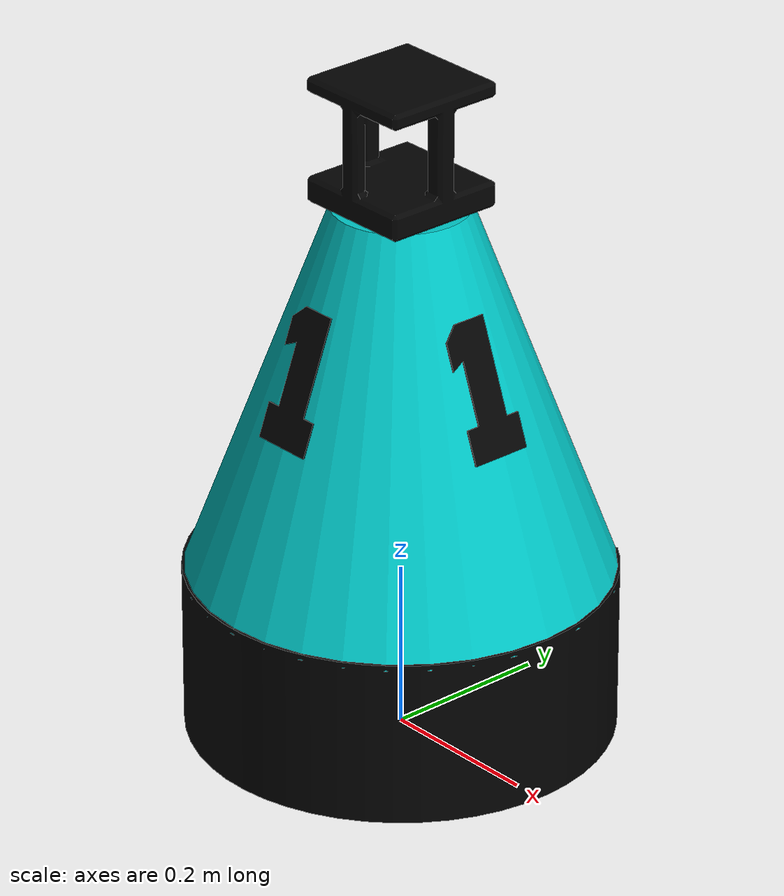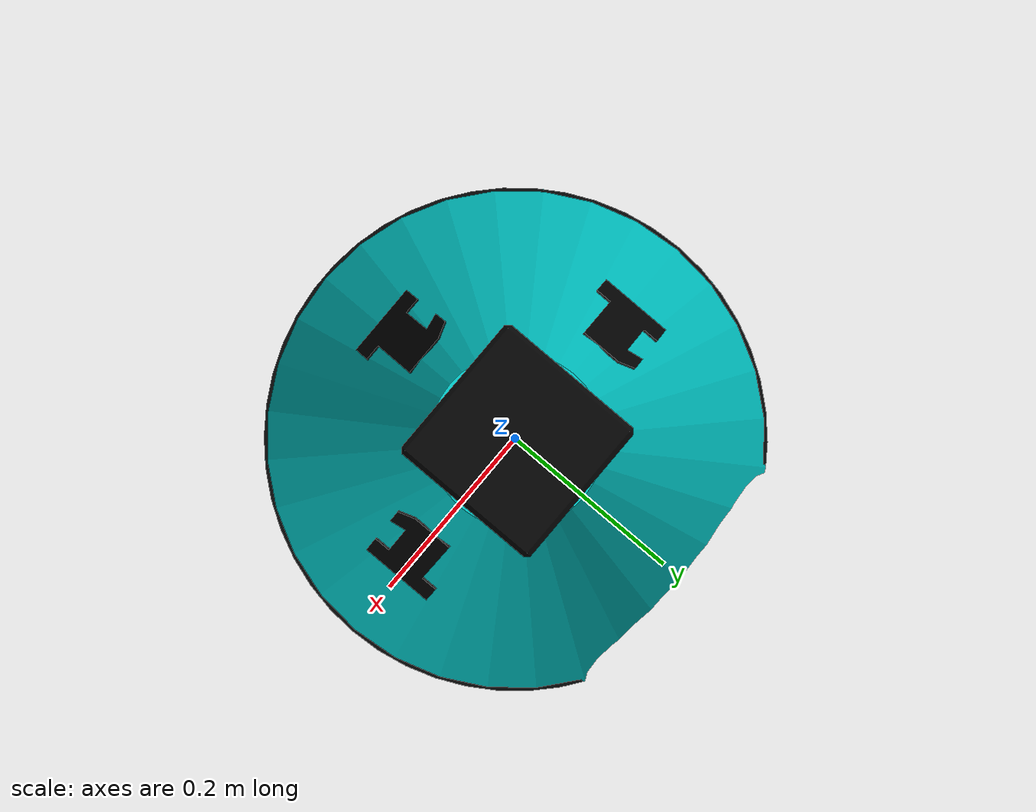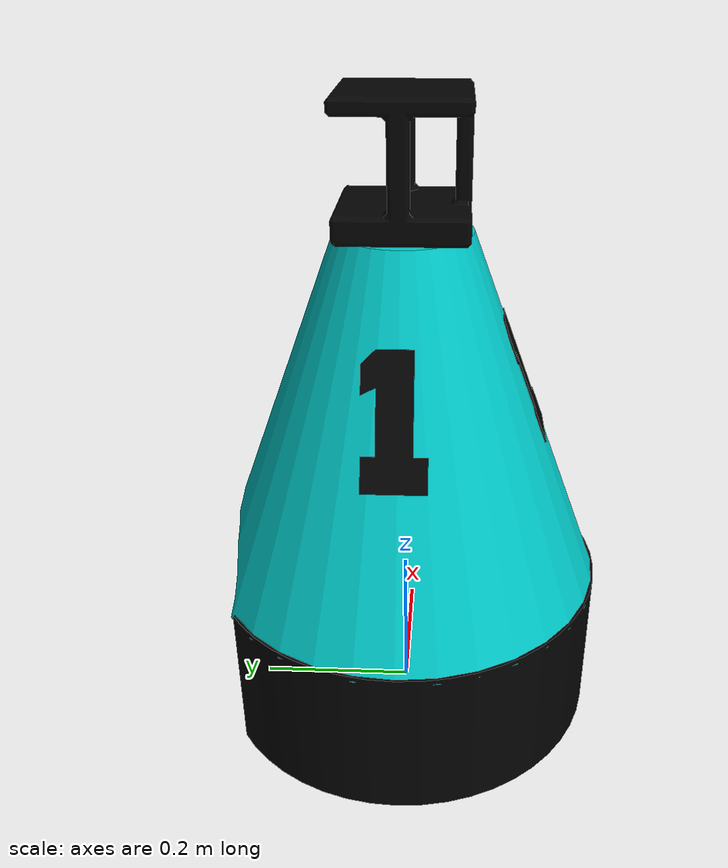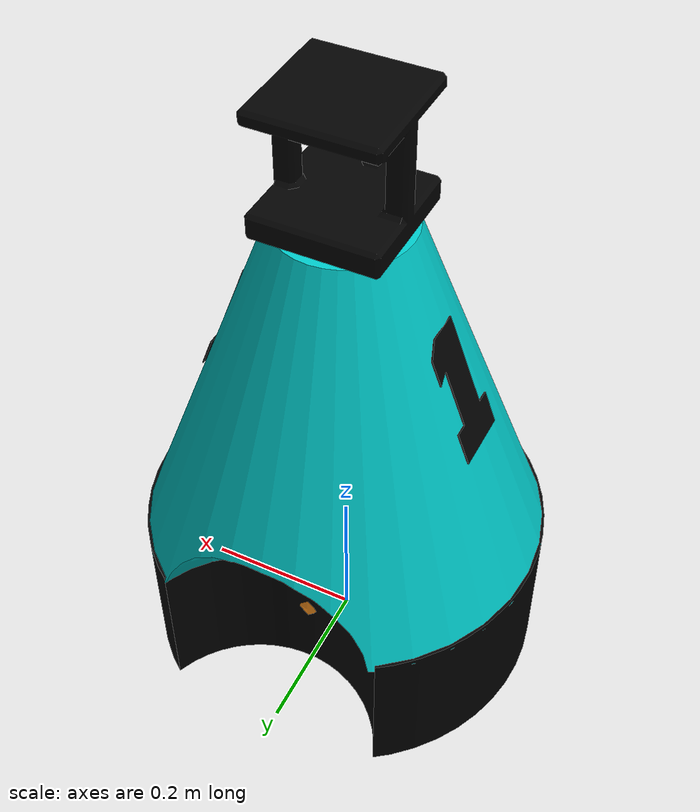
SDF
<sdf version="1.5">
 <world name="default">
  <include><uri>model://sun</uri></include>
  <physics type="ode">
   <max_step_size>0.03125</max_step_size>
   <real_time_update_rate>32</real_time_update_rate>
   <gravity>0 0 -9.8</gravity>
  </physics>
  <include><uri>model://msl_orange_ball</uri></include>
  <include><uri>model://minhoteam_msl_robot</uri><name>minho_robot_1</name></include>
  <plugin filename="libminho_world.so" name="minho_world">
   <model model_id="0">model://msl_orange_ball</model>
   <model model_id="1">model://minhoteam_msl_robot</model>
   <model model_id="2">model://other_msl_robot</model>
  </plugin>
 </world>
</sdf>

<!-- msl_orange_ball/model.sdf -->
<sdf version="1.5">
  <model name="RoboCup MSL Ball">
   <pose>0 0 0.115 0 3.14 0</pose>
    <static>false</static>
    <link name="ball">
        <inertial>
          <mass>0.41</mass>
          <inertia>
            <ixx>3.2e-03</ixx>
            <iyy>3.2e-03</iyy>
            <izz>3.2e-03</izz>
            <ixy>0</ixy>
            <ixz>0</ixz>
            <iyz>0</iyz>
          </inertia>
        </inertial>
      <collision name="collision">
        <geometry>
          <sphere>
            <radius>0.11</radius>
          </sphere>
        </geometry>
        <surface>
            <bounce>
              <restitution_coefficient>0.6</restitution_coefficient>
              <threshold>0.01</threshold>
            </bounce>
            <friction>
              <ode>
                <mu>1</mu>
                <mu2>1</mu2>
                <slip1>0.0</slip1>
                <slip2>0.0</slip2>
              </ode>
            </friction>
            <contact>
              <ode>
                <max_vel>10</max_vel>
                <min_depth>0.001</min_depth>
              </ode>
            </contact>
          </surface>
      </collision>
      <visual name="visual">
        <geometry>
            <sphere>
            <radius>0.11</radius>
          </sphere>
         </geometry>
         <material>
          <script>
            <uri>model://msl_orange_ball/materials/scripts/</uri>
            <uri>model://msl_orange_ball/materials/textures/</uri>
            <name>RoboCupBall/Orange</name>
          </script>
        </material>
      </visual>

      <velocity_decay>
        <linear>0.001</linear>
        <angular>0.05</angular>
      </velocity_decay>
      <self_collide>false</self_collide>
      <gravity>true</gravity>
    </link>
  </model>
</sdf>

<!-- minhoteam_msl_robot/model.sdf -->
<sdf version="1.5">
  <model name="minho_robot">
    <static>false</static>
    <link name="base">
       <pose>0 0 0.01 0 0 1.57</pose>
        <inertial>
        <mass>31</mass>
            <inertia>
               <ixx>100</ixx>
               <ixy>0</ixy>
               <ixz>0</ixz>
               <iyy>100</iyy>
               <iyz>0</iyz>
               <izz>2.86</izz>
           </inertia>
        </inertial>
      <collision name="collision_base">
        <geometry>
          <mesh>
            <scale>1 1 1</scale>
            <uri>model://minhoteam_msl_robot/meshes/base.stl</uri>
          </mesh>
        </geometry>
        <surface>
          <bounce>
            <restitution_coefficient>0</restitution_coefficient>
          </bounce>
          <friction>
              <ode>
                <mu>0.1</mu>
                <mu2>0.1</mu2>
              </ode>
          </friction>
        </surface>
      </collision>
      <visual name="visual_base">
        <geometry>
          <mesh>
            <scale>1 1 1</scale>
            <uri>model://minhoteam_msl_robot/meshes/base.stl</uri>
          </mesh>
        </geometry>
        <material>
            <ambient>0.02 0.02 0.02 1.0</ambient>
            <diffuse>0.01 0.01 0.01 1.0</diffuse>
            <specular>0.4 0.4 0.4 1.0</specular>
        </material>
      </visual>
      <self_collide>true</self_collide>
      <gravity>true</gravity>
    </link>

    <link name="mid">
       <pose>0 0 0.008 0 0 1.57</pose>
      <collision name="collision_middle">
        <geometry>
          <mesh>
            <scale>1 1 1</scale>
            <uri>model://minhoteam_msl_robot/meshes/mid.stl</uri>
          </mesh>
        </geometry>
      </collision>
      <visual name="visual_middle">
        <geometry>
          <mesh>
            <scale>1 1 1</scale>
            <uri>model://minhoteam_msl_robot/meshes/mid.stl</uri>
          </mesh>
        </geometry>
            <material>
                <!-- CYAN -->
                <ambient>0.0 0.1 0.6 1.0</ambient>
                <diffuse>0.0 0.8 0.8 1.0</diffuse>
                <specular>0.5 0.5 0.5 1.0</specular>
            </material>
      </visual>
    <self_collide>true</self_collide>
    <gravity>true</gravity>
    </link>

    <link name="head">
      <collision name="collision_head">
      <pose>0 0 0.73 0 0 1.57</pose>
        <geometry>
          <box>
            <size>0.15 0.15 0.15</size>
          </box>
        </geometry>
      </collision>
      <visual name="visual_head">
      <pose>0 0 0.01 0 0 1.57</pose>
        <geometry>
          <mesh>
            <scale>1 1 1</scale>
            <uri>model://minhoteam_msl_robot/meshes/head.stl</uri>
          </mesh>
        </geometry>
        <material>
            <ambient>0.0 0.0 0.0 1.0</ambient>
            <diffuse>0.01 0.01 0.01 1.0</diffuse>
            <specular>0.5 0.5 0.5 1.0</specular>
        </material>
      </visual>
    <self_collide>true</self_collide>
      <gravity>true</gravity>
    </link>

    <link name="numberings">
    <pose>0 0 0.008 0 0 1.57</pose>
     <visual name="numbering_back">
      <pose>-0.172 0 0.4 1.21 0 -1.57</pose>
        <cast_shadows>false</cast_shadows>
        <geometry>
          <mesh>
            <scale>0.3 0.3 0.3</scale>
            <uri>model://minhoteam_msl_robot/meshes/nr_1.stl</uri>
          </mesh>
        </geometry>
        <material>
            <ambient>0.02 0.02 0.02 1.0</ambient>
            <diffuse>0.01 0.01 0.01 1.0</diffuse>
            <specular>0.4 0.4 0.4 1.0</specular>
        </material>
      </visual>
      <visual name="numbering_right">
      <pose>0 -0.172 0.4 1.21 0 0</pose>
        <cast_shadows>false</cast_shadows>
        <geometry>
          <mesh>
            <scale>0.3 0.3 0.3</scale>
            <uri>model://minhoteam_msl_robot/meshes/nr_1.stl</uri>
          </mesh>
        </geometry>
        <material>
            <ambient>0.02 0.02 0.02 1.0</ambient>
            <diffuse>0.01 0.01 0.01 1.0</diffuse>
            <specular>0.4 0.4 0.4 1.0</specular>
        </material>
      </visual>
      <visual name="numbering_left">
      <pose>0 0.172 0.4 1.21 0 3.14</pose>
        <cast_shadows>false</cast_shadows>
        <geometry>
          <mesh>
            <scale>0.3 0.3 0.3</scale>
            <uri>model://minhoteam_msl_robot/meshes/nr_1.stl</uri>
          </mesh>
        </geometry>
        <material>
            <ambient>0.02 0.02 0.02 1.0</ambient>
            <diffuse>0.01 0.01 0.01 1.0</diffuse>
            <specular>0.4 0.4 0.4 1.0</specular>
        </material>
      </visual>
    </link>

    <joint type="fixed" name="base_mid">
        <pose>0 0 0.2 0 0 0</pose>
        <child>mid</child>
        <parent>base</parent>
        <axis>
          <xyz>0 0 1</xyz>
        </axis>
    </joint>

    <joint type="fixed" name="mid_head">
        <pose>0 0 0.5 0 0 0</pose>
        <child>head</child>
        <parent>mid</parent>
        <axis>
          <xyz>0 0 1</xyz>
        </axis>
    </joint>

    <joint type="fixed" name="numbers">
        <pose>0 0 0.2 0 0 0</pose>
        <child>mid</child>
        <parent>numberings</parent>
        <axis>
          <xyz>1 1 1</xyz>
        </axis>
    </joint>

    <!-- Fake LIDAR for obstacle detection -->

    <!-- HARDWARE/WORLDMODEL PLUGIN -->
    <plugin filename="libminho_robot.so" name="minho_robot">
               <!-- ROBOT PARAMETERS -->
        <max_linear_velocity>2.5</max_linear_velocity>
        <max_angular_velocity>15.0</max_angular_velocity>
        <max_ball_velocity>8.0</max_ball_velocity>
        <ball_kick_angle>45.0</ball_kick_angle>
        <ball_model_name>RoboCup MSL Ball</ball_model_name>
        <vision_range_radius>6.0</vision_range_radius>
        <max_backwards_grip_vel>30</max_backwards_grip_vel>
        <max_rotation_grip_vel>30</max_rotation_grip_vel>
        <grip_decay>24</grip_decay>
               <!-- ROS NODE BOOT -->
        <ros_boot>
            <!-- COMS_NODE-->
            <node>
               <package>minho_team_ros</package>
               <name>coms_node</name>
               <flags>
                  <flag>-s</flag>
                  <flag>$ID</flag>
               </flags>
            </node>
            <!-- CONTROL_NODE -->
            <node>
               <package>minho_team_ros</package>
               <name>control_node</name>
               <flags>
                  <flag>-s</flag>
                  <flag>$ID</flag>
               </flags>
            </node>
            <!-- AI_NODE-->
            <node>
               <package>minho_team_ros</package>
               <name>ai_node</name>
               <flags>
                  <flag>-s</flag>
                  <flag>$ID</flag>
               </flags>
            </node>

        </ros_boot>
    </plugin>

  </model>
</sdf>
